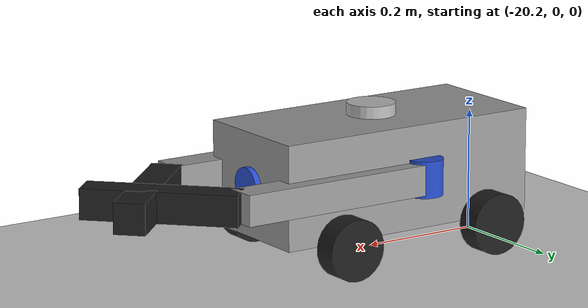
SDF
<sdf version="1.5">
 <world name="default">
  <include><uri>model://sun</uri></include>
  <include><uri>model://ground_plane</uri></include>
  <model name="tankbot0">
   <pose>-20 0 0 0 0 0</pose>
   <include><uri>model://tankbot</uri></include>
   <plugin name="tankbot_control" filename="libtank_control_plugin.so"/>
  </model>
 </world>
</sdf>

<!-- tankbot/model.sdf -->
<sdf version="1.5">
  <!-- http://sdformat.org/spec?elem=sensor&ver=1.5 -->
  <model name="tankbot">
    <link name="chassis">
      <pose>0 0 0.135  0 0 0</pose>
      <inertial>
        <pose>0.04650000000000001 0 0  0 0 0</pose>
        <mass>2.0</mass>
        <inertia>
          <ixx>0.012592666666666665</ixx>
          <iyy>0.04085416666666667</iyy>
          <izz>0.043813500000000005</izz>
          <ixy>0</ixy>
          <ixz>0</ixz>
          <iyz>0</iyz>
        </inertia>
      </inertial>
      <collision name="collision">
        <geometry>
          <box>
            <size>0.465 0.216 0.17</size>
          </box>
        </geometry>
      </collision>
      <visual name="visual">
        <geometry>
          <box>
            <size>0.465 0.216 0.17</size>
          </box>
        </geometry>
        <material>
          <script>
            <uri>file://media/materials/scripts/gazebo.material</uri>
            <name>Gazebo/Grey</name>
          </script>
        </material>
      </visual>
    </link>

    <link name="kicker">
      <pose>0.11750000000000001 0 0.135 0 1.5707963267948966 0</pose>
      <inertial>
        <mass>1.0</mass>
        <inertia><ixx>0.0054333333333333326</ixx><iyy>0.0054333333333333326</iyy><izz>0.00045</izz><ixy>0</ixy><ixz>0</ixz><iyz>0</iyz></inertia>
      </inertial>
      <collision name='collision'>
        <geometry><cylinder><radius>0.03</radius><length>0.25</length></cylinder></geometry>
      </collision>
      <visual name="visual">
        <geometry><cylinder><radius>0.03</radius><length>0.25</length></cylinder></geometry>
        <material>
          <script>
            <uri>file://media/materials/scripts/gazebo.material</uri>
            <name>Gazebo/Blue</name>
          </script>
        </material>
      </visual>
    </link>

    <joint name="kicker_joint" type="prismatic">
      <parent>chassis</parent>
      <child>kicker</child>
      <axis>
        <xyz>0 0 1</xyz>
        <limit>
          <lower>0</lower>
          <upper> 0.24</upper>
        </limit>
      </axis>
    </joint>

    <link name="right_aftarm">
      <inertial>
        <mass>1</mass>
        <inertia><ixx>0.166667</ixx><ixy>0</ixy><ixz>0</ixz><iyy>0.166667</iyy><iyz>0</iyz><izz>0.166667</izz></inertia>
      </inertial>
      <pose>0.14650000000000002 -0.108 0.135 0 0 0</pose>
      <visual name='visual'>
        <geometry><box><size>0.35 0.05 0.05</size></box></geometry>
        <material>
          <script><uri>file://media/materials/scripts/gazebo.material</uri><name>Gazebo/Grey</name></script>
        </material>
      </visual>
      <collision name='collision'>
        <geometry><box><size>0.35 0.05 0.05</size></box></geometry>
      </collision>
    </link>
    <link name="right_forearm">
      <inertial>
        <mass>1</mass>
        <inertia><ixx>0.166667</ixx><ixy>0</ixy><ixz>0</ixz><iyy>0.166667</iyy><iyz>0</iyz><izz>0.166667</izz></inertia>
      </inertial>
      <pose>0.40811165235168156
        -0.019611652351681552
        0.135 0 0 0.7853981633974483</pose>
      <visual name='visual'>
        <geometry><box><size>0.25 0.05 0.05</size></box></geometry>
        <material>
          <script><uri>file://media/materials/scripts/gazebo.material</uri><name>Gazebo/Black</name></script>
        </material>
      </visual>
      <collision name='collision'>
        <geometry><box><size>0.25 0.05 0.05</size></box></geometry>
      </collision>
    </link>

    <link name="right_shoulder">
      <inertial>
        <mass>1</mass>
        <inertia><ixx>0.166667</ixx><ixy>0</ixy><ixz>0</ixz><iyy>0.166667</iyy><iyz>0</iyz><izz>0.166667</izz></inertia>
      </inertial>
      <pose>-0.02849999999999997
        -0.108
        0.135 0 0 0.7853981633974483</pose>
      <visual name='visual'>
        <geometry><cylinder><radius>0.03</radius><length>0.06</length></cylinder></geometry>
        <material>
          <script><uri>file://media/materials/scripts/gazebo.material</uri><name>Gazebo/Blue</name></script>
        </material>
      </visual>
      <collision name='collision'>
        <geometry><cylinder><radius>0.03</radius><length>0.06</length></cylinder></geometry>
      </collision>
    </link>
    <joint name="right_elbow_joint" type="fixed">
      <parent>right_aftarm</parent>
      <child>right_forearm</child>
    </joint>
    <joint name="right_pre_shoulder_joint" type="fixed">
      <parent>right_shoulder</parent>
      <child>right_aftarm</child>
    </joint>
    <joint name="right_shoulder_joint" type="revolute">
      <parent>chassis</parent>
      <child>right_shoulder</child>
      <axis>
        <xyz>0 0 1</xyz>
      </axis>
    </joint>

    <link name="left_aftarm">
      <inertial>
        <mass>1</mass>
        <inertia><ixx>0.166667</ixx><ixy>0</ixy><ixz>0</ixz><iyy>0.166667</iyy><iyz>0</iyz><izz>0.166667</izz></inertia>
      </inertial>
      <pose>0.14650000000000002 0.108 0.135 0 0 0</pose>
      <visual name='visual'>
        <geometry><box><size>0.35 0.05 0.05</size></box></geometry>
        <material>
          <script><uri>file://media/materials/scripts/gazebo.material</uri><name>Gazebo/Grey</name></script>
        </material>
      </visual>
      <collision name='collision'>
        <geometry><box><size>0.35 0.05 0.05</size></box></geometry>
      </collision>
    </link>
    <link name="left_forearm">
      <inertial>
        <mass>1</mass>
        <inertia><ixx>0.166667</ixx><ixy>0</ixy><ixz>0</ixz><iyy>0.166667</iyy><iyz>0</iyz><izz>0.166667</izz></inertia>
      </inertial>
      <pose>0.40811165235168156
        0.019611652351681552
        0.135 0 0 -0.7853981633974483</pose>
      <visual name='visual'>
        <geometry><box><size>0.25 0.05 0.05</size></box></geometry>
        <material>
          <script><uri>file://media/materials/scripts/gazebo.material</uri><name>Gazebo/Black</name></script>
        </material>
      </visual>
      <collision name='collision'>
        <geometry><box><size>0.25 0.05 0.05</size></box></geometry>
      </collision>
    </link>

    <link name="left_shoulder">
      <inertial>
        <mass>1</mass>
        <inertia><ixx>0.166667</ixx><ixy>0</ixy><ixz>0</ixz><iyy>0.166667</iyy><iyz>0</iyz><izz>0.166667</izz></inertia>
      </inertial>
      <pose>-0.02849999999999997
        0.108
        0.135 0 0 -0.7853981633974483</pose>
      <visual name='visual'>
        <geometry><cylinder><radius>0.03</radius><length>0.06</length></cylinder></geometry>
        <material>
          <script><uri>file://media/materials/scripts/gazebo.material</uri><name>Gazebo/Blue</name></script>
        </material>
      </visual>
      <collision name='collision'>
        <geometry><cylinder><radius>0.03</radius><length>0.06</length></cylinder></geometry>
      </collision>
    </link>
    <joint name="left_elbow_joint" type="fixed">
      <parent>left_aftarm</parent>
      <child>left_forearm</child>
    </joint>
    <joint name="left_pre_shoulder_joint" type="fixed">
      <parent>left_shoulder</parent>
      <child>left_aftarm</child>
    </joint>
    <joint name="left_shoulder_joint" type="revolute">
      <parent>chassis</parent>
      <child>left_shoulder</child>
      <axis>
        <xyz>0 0 1</xyz>
      </axis>
    </joint>

    <link name="wheel_fl">
      <pose>
        0.1395 0.14200000000000002 0.05
        -1.5707963267948966 -0.08726646259971647 0
      </pose>
      <inertial>
        <mass>0.25</mass>
        <inertia>
          <ixx>0.00018958333333333338</ixx>
          <iyy>0.00018958333333333338</iyy>
          <izz>0.00031250000000000006</izz>
          <ixy>0</ixy>
          <ixz>0</ixz>
          <iyz>0</iyz>
        </inertia>
      </inertial>
      <collision name="collision">
        <geometry>
          <cylinder>
            <radius>0.05</radius>
            <length>0.04</length>
          </cylinder>
        </geometry>
      </collision>
      <visual name="visual">
        <geometry>
          <cylinder>
            <radius>0.05</radius>
            <length>0.04</length>
          </cylinder>
        </geometry>
        <material>
          <script>
            <uri>file://media/materials/scripts/gazebo.material</uri>
            <name>Gazebo/Black</name>
          </script>
        </material>
      </visual>
    </link>

    <joint name="wheel_fl_drive" type="revolute">
      <parent>chassis</parent>
      <child>wheel_fl</child>
      <axis>
        <xyz>0 0 1</xyz>
      </axis>
    </joint>

    <link name="wheel_fr">
      <pose>
        0.1395 -0.14200000000000002 0.05
        -1.5707963267948966 -0.08726646259971647 0
      </pose>
      <inertial>
        <mass>0.25</mass>
        <inertia>
          <ixx>0.00018958333333333338</ixx>
          <iyy>0.00018958333333333338</iyy>
          <izz>0.00031250000000000006</izz>
          <ixy>0</ixy>
          <ixz>0</ixz>
          <iyz>0</iyz>
        </inertia>
      </inertial>
      <collision name="collision">
        <geometry>
          <cylinder>
            <radius>0.05</radius>
            <length>0.04</length>
          </cylinder>
        </geometry>
      </collision>
      <visual name="visual">
        <geometry>
          <cylinder>
            <radius>0.05</radius>
            <length>0.04</length>
          </cylinder>
        </geometry>
        <material>
          <script>
            <uri>file://media/materials/scripts/gazebo.material</uri>
            <name>Gazebo/Black</name>
          </script>
        </material>
      </visual>
    </link>

    <joint name="wheel_fr_drive" type="revolute">
      <parent>chassis</parent>
      <child>wheel_fr</child>
      <axis>
        <xyz>0 0 1</xyz>
      </axis>
    </joint>

    <link name="wheel_rl">
      <pose>
       -0.1395 0.14200000000000002 0.05
       -1.5707963267948966 0 0
      </pose>
      <inertial>
        <mass>0.25</mass>
        <inertia>
          <ixx>0.00018958333333333338</ixx>
          <iyy>0.00018958333333333338</iyy>
          <izz>0.00031250000000000006</izz>
          <ixy>0</ixy>
          <ixz>0</ixz>
          <iyz>0</iyz>
        </inertia>
      </inertial>
      <collision name="collision">
        <geometry>
          <cylinder>
            <radius>0.05</radius>
            <length>0.04</length>
          </cylinder>
        </geometry>
      </collision>
      <visual name="visual">
        <geometry>
          <cylinder>
            <radius>0.05</radius>
            <length>0.04</length>
          </cylinder>
        </geometry>
        <material>
          <script>
            <uri>file://media/materials/scripts/gazebo.material</uri>
            <name>Gazebo/Black</name>
          </script>
        </material>
      </visual>
    </link>
    <joint name="wheel_rl_drive" type="revolute">
      <parent>chassis</parent>
      <child>wheel_rl</child>
      <axis>
        <xyz>0 0 1</xyz>
      </axis>
    </joint>

    <link name="wheel_rr">
      <pose>
       -0.1395 -0.14200000000000002 0.05
       -1.5707963267948966 0 0
      </pose>
      <inertial>
        <mass>0.25</mass>
        <inertia>
          <ixx>0.00018958333333333338</ixx>
          <iyy>0.00018958333333333338</iyy>
          <izz>0.00031250000000000006</izz>
          <ixy>0</ixy>
          <ixz>0</ixz>
          <iyz>0</iyz>
        </inertia>
      </inertial>
      <collision name="collision">
        <geometry>
          <cylinder>
            <radius>0.05</radius>
            <length>0.04</length>
          </cylinder>
        </geometry>
      </collision>
      <visual name="visual">
        <geometry>
          <cylinder>
            <radius>0.05</radius>
            <length>0.04</length>
          </cylinder>
        </geometry>
        <material>
          <script>
            <uri>file://media/materials/scripts/gazebo.material</uri>
            <name>Gazebo/Black</name>
          </script>
        </material>
      </visual>
    </link>
    <joint name="wheel_rr_drive" type="revolute">
      <parent>chassis</parent>
      <child>wheel_rr</child>
      <axis>
        <xyz>0 0 1</xyz>
      </axis>
    </joint>

    <include>
      <uri>model://ultrasonic_sensor</uri>
      <pose>
        0.0 0.0 0.22000000000000003
        0.0 0.0 0.0
      </pose>
    </include>

    <joint name="sonar_joint" type="fixed">
      <child>ultrasonic_sensor::link</child>
      <parent>chassis</parent>
    </joint>
  </model>
</sdf>

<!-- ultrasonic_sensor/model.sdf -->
<sdf version="1.6">
  <model name="ultrasonic_sensor">
    <pose>0 0 0.02 0 0 0</pose>
    <link name="link">

      <inertial>
        <mass>0.1</mass>
      </inertial>

      <visual name="visual">
        <geometry>
          <cylinder>
            <radius>0.04</radius>
            <length>0.04</length>
          </cylinder>
        </geometry>
      </visual>

      <collision name="collision-base">
        <pose>0 0 -0.0145 0 0 0</pose>
        <geometry>
          <box>
            <size>0.05 0.05 0.041</size>
          </box>
        </geometry>
      </collision>

      <collision name="collision-top">
        <pose>0 0 0.0205 0 0 0</pose>
        <geometry>
          <cylinder>
            <radius>0.021</radius>
            <length>0.029</length>
          </cylinder>
        </geometry>
      </collision>

      <sensor name="sonar" type="sonar">
        <pose>0.04 0 0 0 1.5 3.14</pose>
        <sonar>
          <min>0</min>
          <max>3</max>
          <radius>0.3</radius>
        </sonar>
        <plugin name="sonar" filename="libSonarPlugin.so" />
        <always_on>1</always_on>
        <update_rate>30</update_rate>
        <visualize>true</visualize>
      </sensor>

    </link>
  </model>
</sdf>
